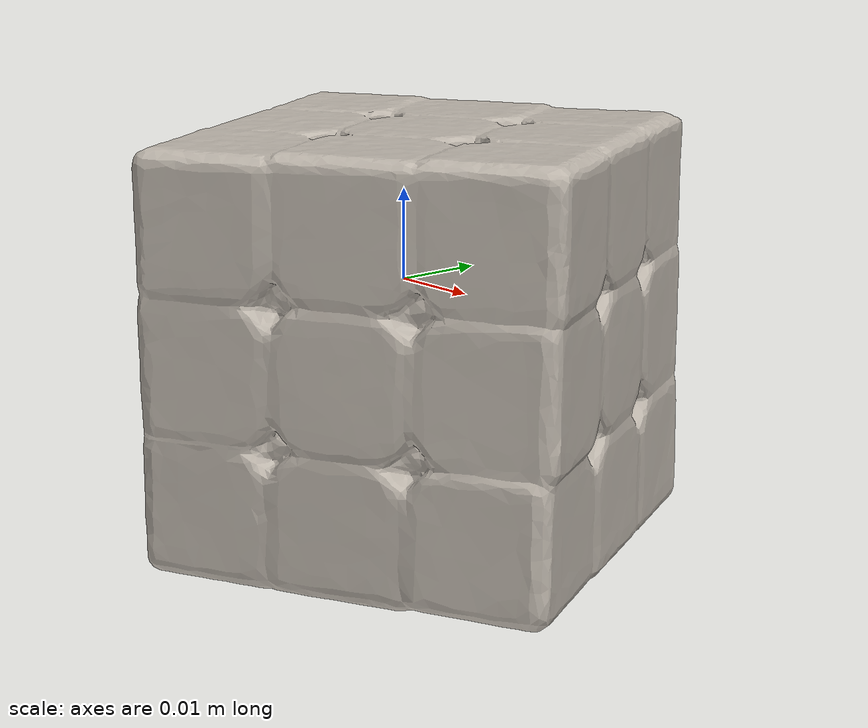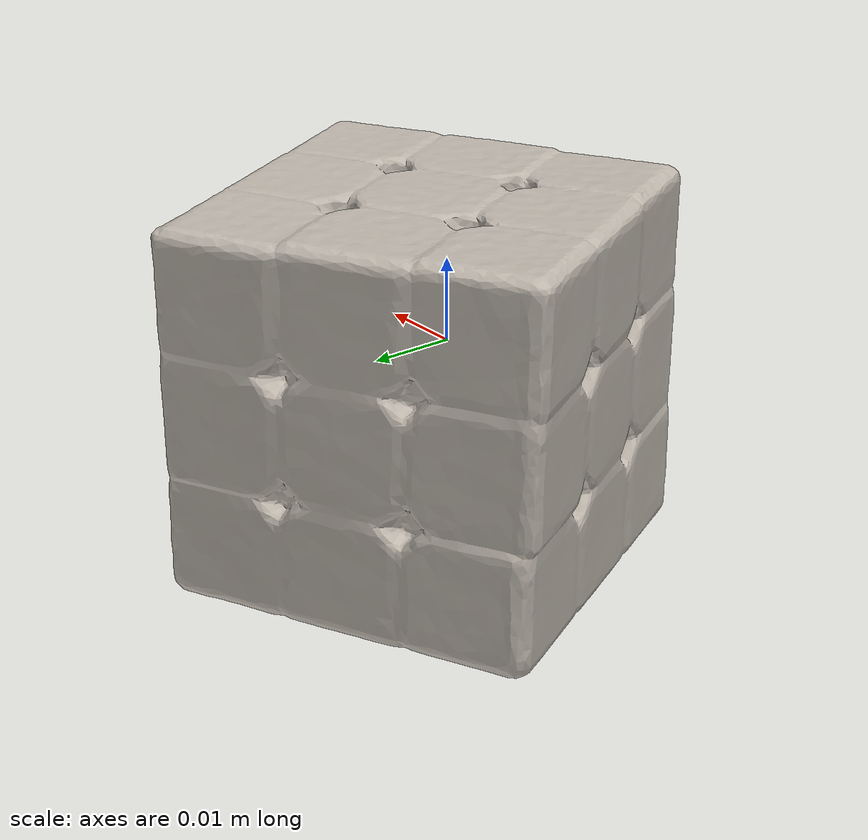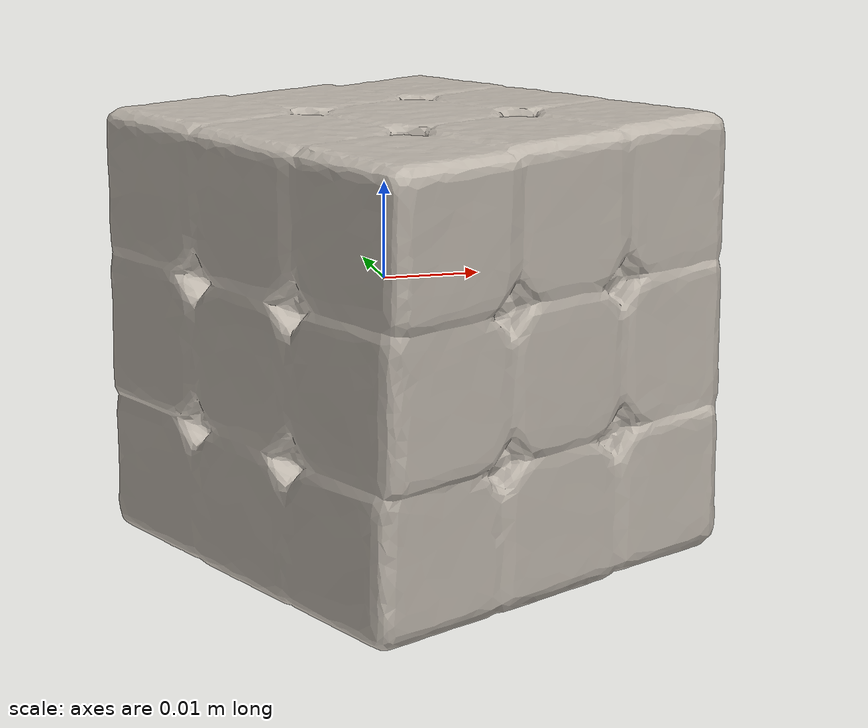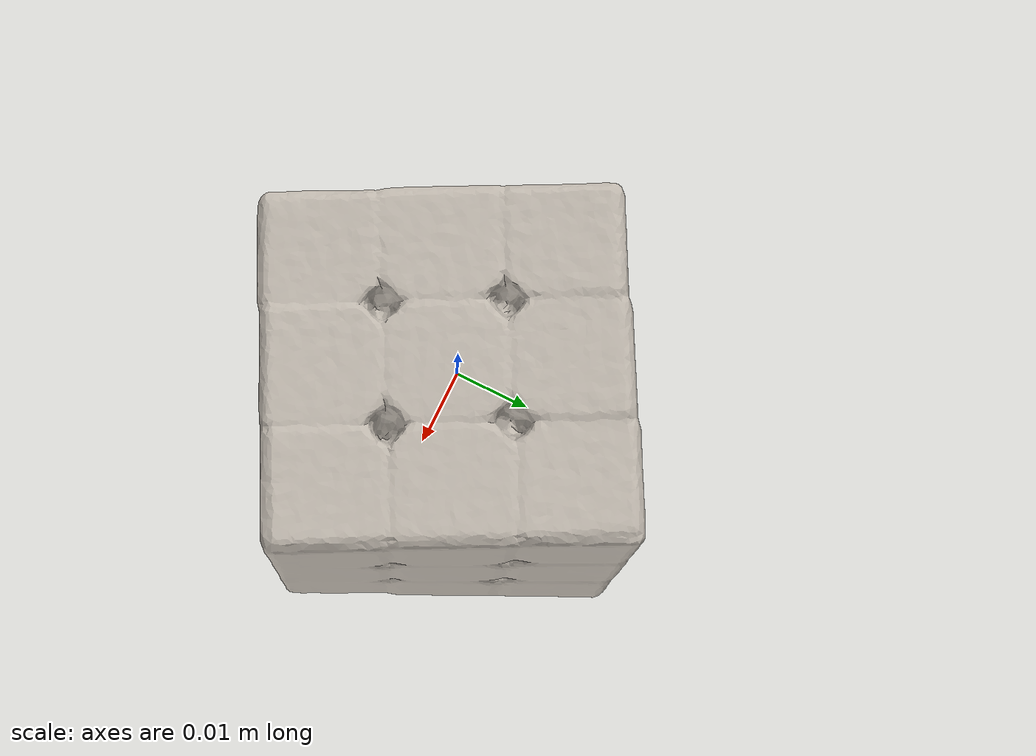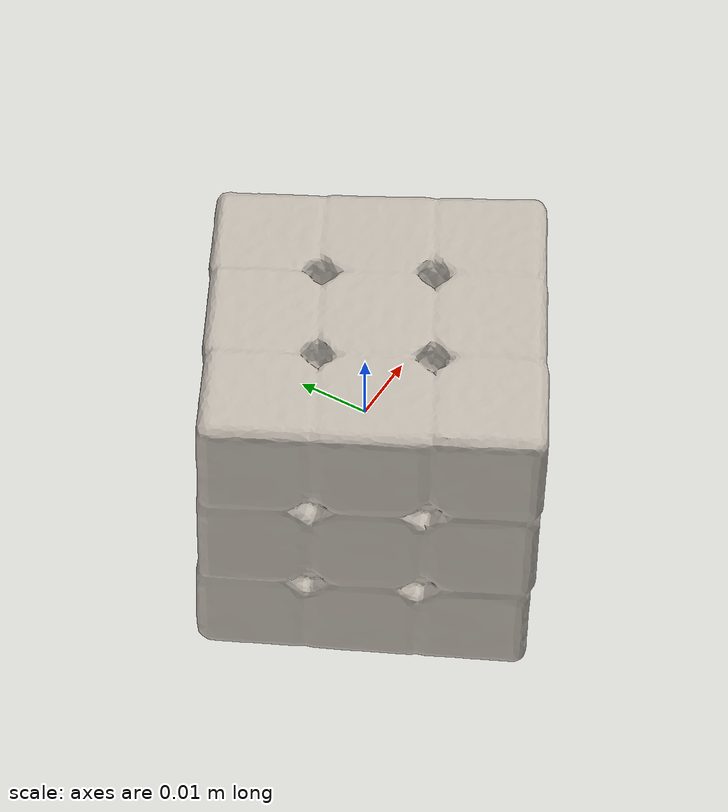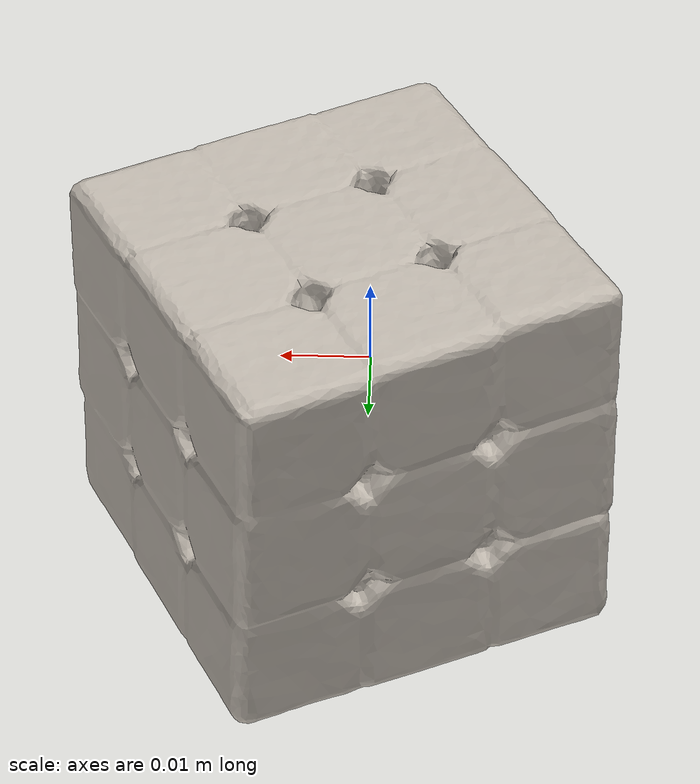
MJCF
<mujoco model="bread">
  <asset>
    <mesh file="nontextured.stl" name="obj_mesh" scale="0.8 0.8 0.8"/>
    <texture file="../../../../../textures/bread.png" type="2d" name="tex-bread" />
    <material name="bread" reflectance="0.7" texrepeat="15 15" texture="tex-bread" texuniform="true"/>
  </asset>
  <worldbody>
    <body>
      <body name="collision">
        <geom pos="0.0161035 0.0005045000000000015 -0.0286545" mesh="obj_mesh" type="mesh" solimp="0.998 0.998 0.001" solref="0.001 1" density="50" friction="0.95 0.3 0.1"  material="bread" group="1" condim="4"/>
      </body>
      <body name="visual">
        <geom pos="0.0161035 0.0005045000000000015 -0.0286545" mesh="obj_mesh" type="mesh" material="bread"  conaffinity="0" contype="0"  group="0" mass="0.0001"/>
        <geom pos="0.0161035 0.0005045000000000015 -0.0286545" mesh="obj_mesh" type="mesh" material="bread"  conaffinity="0" contype="0"  group="1" mass="0.0001"/>
      </body>
      <site rgba="0 0 0 0" size="0.005" pos="0 0 -0.028969500000000002" name="bottom_site"/>
      <site rgba="0 0 0 0" size="0.005" pos="0 0 0.028969500000000002" name="top_site"/>
      <site rgba="0 0 0 0" size="0.005" pos="0.0378725 0.038058499999999995 0.028969500000000002" name="horizontal_radius_site"/>
    </body>
  </worldbody>
</mujoco>
